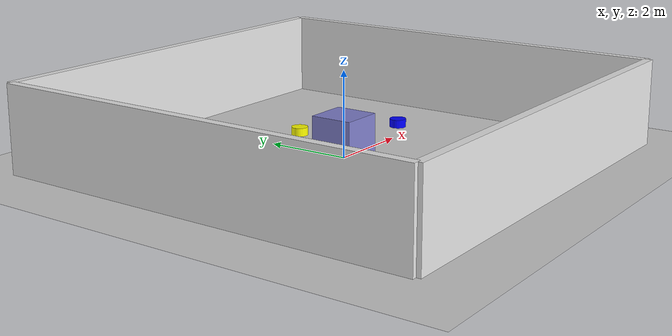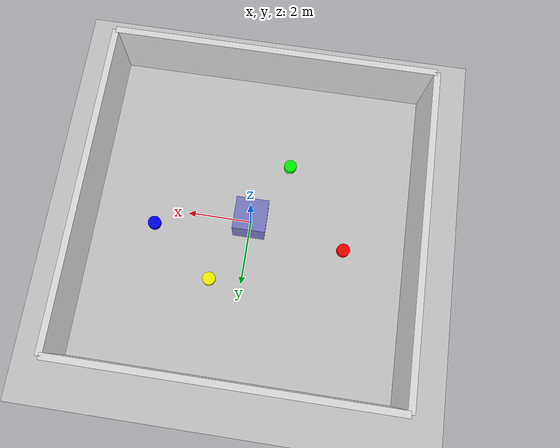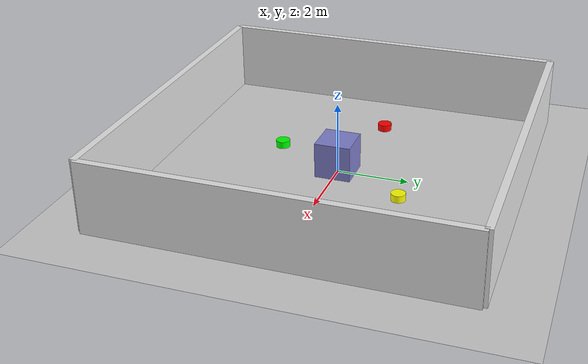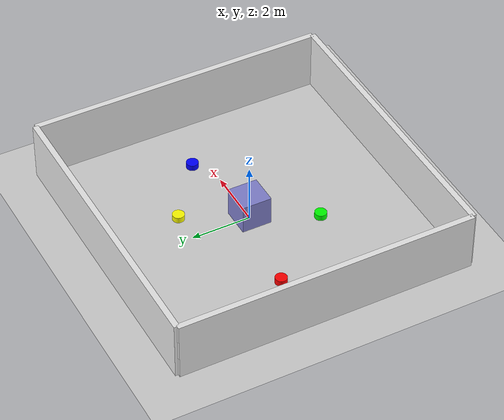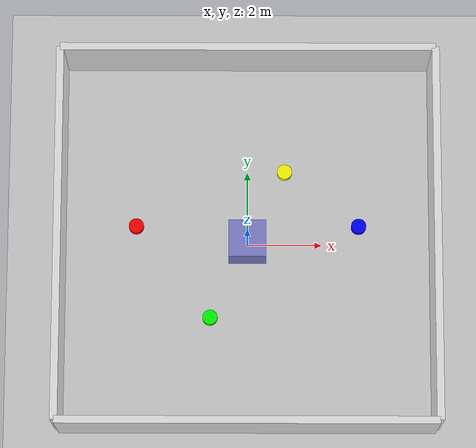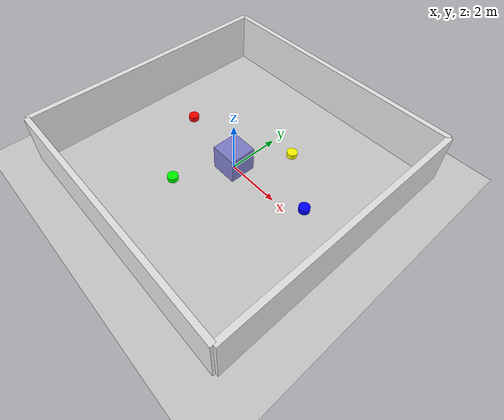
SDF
<?xml version="1.0"?>
<sdf version="1.8">
    <world name="empty_room_gazebo">
        <!-- Physics -->
        <physics name="1ms" type="ode">
            <max_step_size>0.001</max_step_size>
            <real_time_factor>1.0</real_time_factor>
        </physics>

        <!-- Scene -->
        <scene>
            <ambient>0.5 0.5 0.5 1.0</ambient>
            <background>0.7 0.7 0.7 1.0</background>
            <grid>true</grid>
            <origin_visual>true</origin_visual>
            <shadows>true</shadows>
        </scene>

        <!-- Lighting -->
        <light type="directional" name="sun">
            <cast_shadows>true</cast_shadows>
            <pose>0 0 10 0 0 0</pose>
            <diffuse>0.8 0.8 0.8 1</diffuse>
            <specular>0.2 0.2 0.2 1</specular>
            <attenuation>
                <range>1000</range>
                <constant>0.9</constant>
                <linear>0.01</linear>
                <quadratic>0.001</quadratic>
            </attenuation>
            <direction>-0.5 0.1 -0.9</direction>
        </light>

        <!-- Ground Plane -->
        <model name="ground_plane">
            <static>true</static>
            <link name="link">
                <collision name="collision">
                    <geometry>
                        <plane>
                            <normal>0 0 1</normal>
                            <size>20 20</size>
                        </plane>
                    </geometry>
                </collision>
                <visual name="visual">
                    <geometry>
                        <plane>
                            <normal>0 0 1</normal>
                            <size>20 20</size>
                        </plane>
                    </geometry>
                    <material>
                        <ambient>0.8 0.8 0.8 1</ambient>
                        <diffuse>0.8 0.8 0.8 1</diffuse>
                        <specular>0.8 0.8 0.8 1</specular>
                    </material>
                </visual>
            </link>
        </model>

        <!-- Room Walls -->
        <!-- Left Wall -->
        <model name="left_wall">
            <static>true</static>
            <pose>-5 0 1 0 0 0</pose>
            <link name="link">
                <collision name="collision">
                    <geometry>
                        <box>
                            <size>0.2 10 2</size>
                        </box>
                    </geometry>
                </collision>
                <visual name="visual">
                    <geometry>
                        <box>
                            <size>0.2 10 2</size>
                        </box>
                    </geometry>
                    <material>
                        <ambient>0.9 0.9 0.9 1</ambient>
                        <diffuse>0.9 0.9 0.9 1</diffuse>
                    </material>
                </visual>
            </link>
        </model>

        <!-- Right Wall -->
        <model name="right_wall">
            <static>true</static>
            <pose>5 0 1 0 0 0</pose>
            <link name="link">
                <collision name="collision">
                    <geometry>
                        <box>
                            <size>0.2 10 2</size>
                        </box>
                    </geometry>
                </collision>
                <visual name="visual">
                    <geometry>
                        <box>
                            <size>0.2 10 2</size>
                        </box>
                    </geometry>
                    <material>
                        <ambient>0.9 0.9 0.9 1</ambient>
                        <diffuse>0.9 0.9 0.9 1</diffuse>
                    </material>
                </visual>
            </link>
        </model>

        <!-- Front Wall -->
        <model name="front_wall">
            <static>true</static>
            <pose>0 5 1 0 0 0</pose>
            <link name="link">
                <collision name="collision">
                    <geometry>
                        <box>
                            <size>10 0.2 2</size>
                        </box>
                    </geometry>
                </collision>
                <visual name="visual">
                    <geometry>
                        <box>
                            <size>10 0.2 2</size>
                        </box>
                    </geometry>
                    <material>
                        <ambient>0.9 0.9 0.9 1</ambient>
                        <diffuse>0.9 0.9 0.9 1</diffuse>
                    </material>
                </visual>
            </link>
        </model>

        <!-- Back Wall -->
        <model name="back_wall">
            <static>true</static>
            <pose>0 -5 1 0 0 0</pose>
            <link name="link">
                <collision name="collision">
                    <geometry>
                        <box>
                            <size>10 0.2 2</size>
                        </box>
                    </geometry>
                </collision>
                <visual name="visual">
                    <geometry>
                        <box>
                            <size>10 0.2 2</size>
                        </box>
                    </geometry>
                    <material>
                        <ambient>0.9 0.9 0.9 1</ambient>
                        <diffuse>0.9 0.9 0.9 1</diffuse>
                    </material>
                </visual>
            </link>
        </model>

        <!-- Waypoint Markers -->
        <!-- Point A (Red) -->
        <model name="waypoint_A">
            <static>true</static>
            <pose>-3.0 0.5 0.1 0 0 0</pose>
            <link name="link">
                <visual name="visual">
                    <geometry>
                        <cylinder>
                            <radius>0.2</radius>
                            <length>0.2</length>
                        </cylinder>
                    </geometry>
                    <material>
                        <ambient>1 0 0 1</ambient>
                        <diffuse>1 0 0 1</diffuse>
                    </material>
                </visual>
            </link>
        </model>

        <!-- Point B (Green) -->
        <model name="waypoint_B">
            <static>true</static>
            <pose>-1.0 -2.0 0.1 0 0 0</pose>
            <link name="link">
                <visual name="visual">
                    <geometry>
                        <cylinder>
                            <radius>0.2</radius>
                            <length>0.2</length>
                        </cylinder>
                    </geometry>
                    <material>
                        <ambient>0 1 0 1</ambient>
                        <diffuse>0 1 0 1</diffuse>
                    </material>
                </visual>
            </link>
        </model>

        <!-- Point C (Blue) -->
        <model name="waypoint_C">
            <static>true</static>
            <pose>3.0 0.5 0.1 0 0 0</pose>
            <link name="link">
                <visual name="visual">
                    <geometry>
                        <cylinder>
                            <radius>0.2</radius>
                            <length>0.2</length>
                        </cylinder>
                    </geometry>
                    <material>
                        <ambient>0 0 1 1</ambient>
                        <diffuse>0 0 1 1</diffuse>
                    </material>
                </visual>
            </link>
        </model>

        <!-- Point D (Yellow) -->
        <model name="waypoint_D">
            <static>true</static>
            <pose>1.0 2.0 0.1 0 0 0</pose>
            <link name="link">
                <visual name="visual">
                    <geometry>
                        <cylinder>
                            <radius>0.2</radius>
                            <length>0.2</length>
                        </cylinder>
                    </geometry>
                    <material>
                        <ambient>1 1 0 1</ambient>
                        <diffuse>1 1 0 1</diffuse>
                    </material>
                </visual>
            </link>
        </model>

        <!-- Central Obstacle (Optional) -->
        <model name="central_box">
            <static>true</static>
            <pose>0 0 0.5 0 0 0</pose>
            <link name="link">
                <collision name="collision">
                    <geometry>
                        <box>
                            <size>1 1 1</size>
                        </box>
                    </geometry>
                </collision>
                <visual name="visual">
                    <geometry>
                        <box>
                            <size>1 1 1</size>
                        </box>
                    </geometry>
                    <material>
                        <ambient>0.5 0.5 0.8 1</ambient>
                        <diffuse>0.5 0.5 0.8 1</diffuse>
                    </material>
                </visual>
            </link>
        </model>

    </world>
</sdf>
